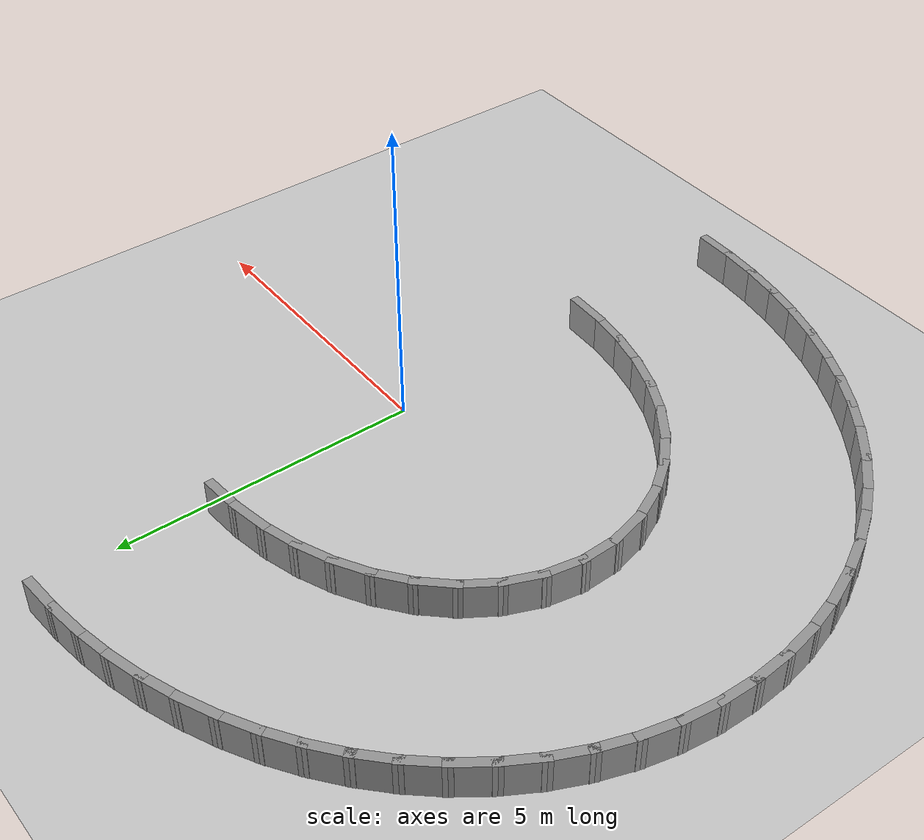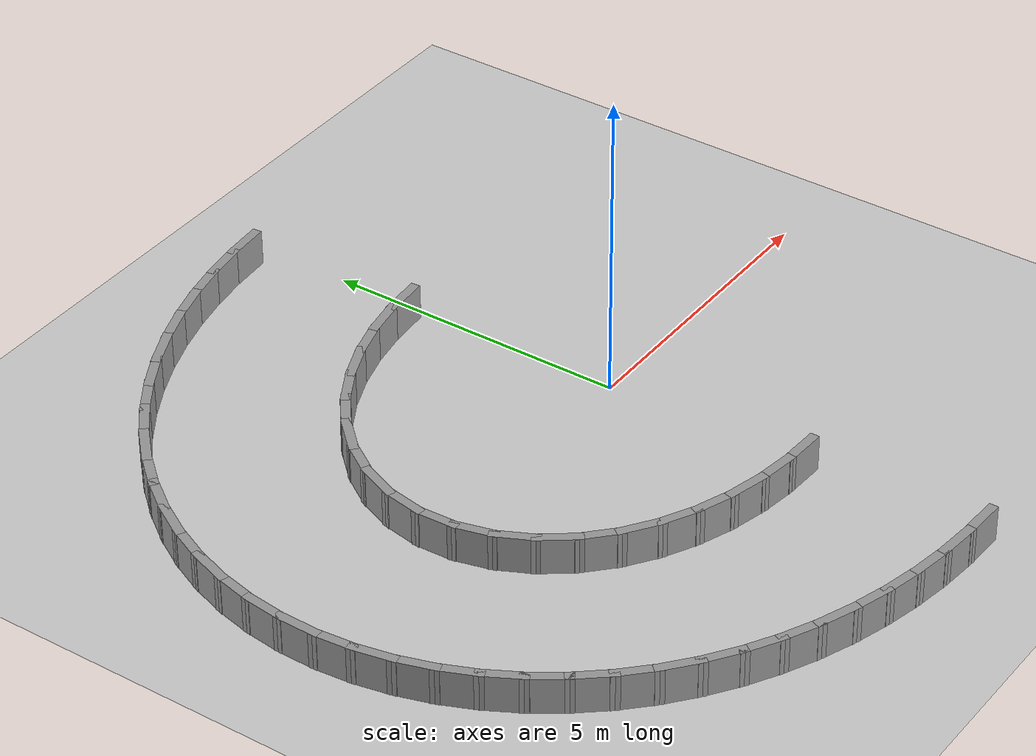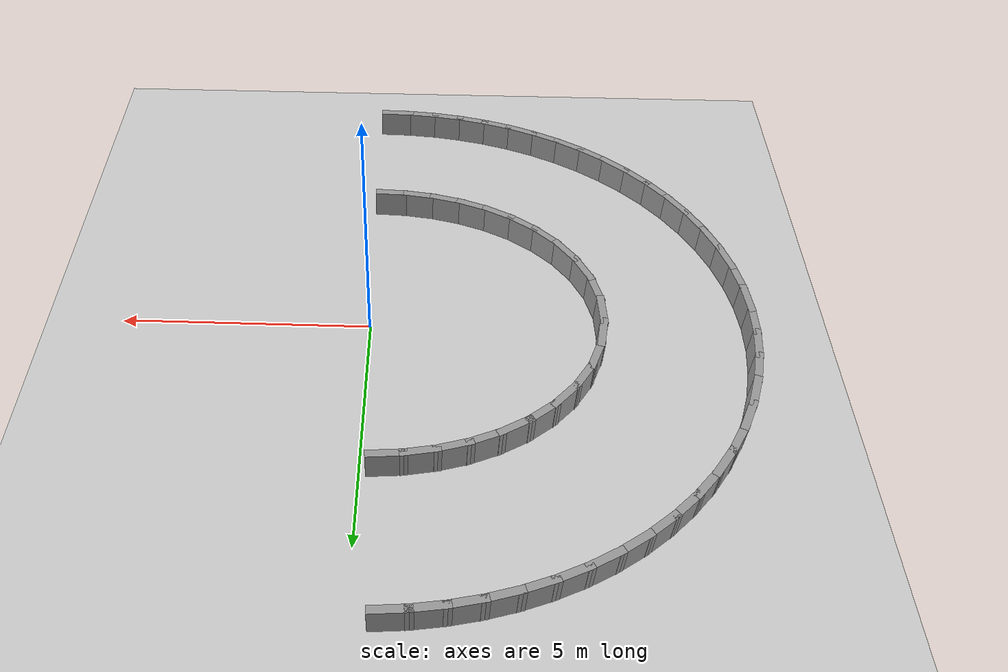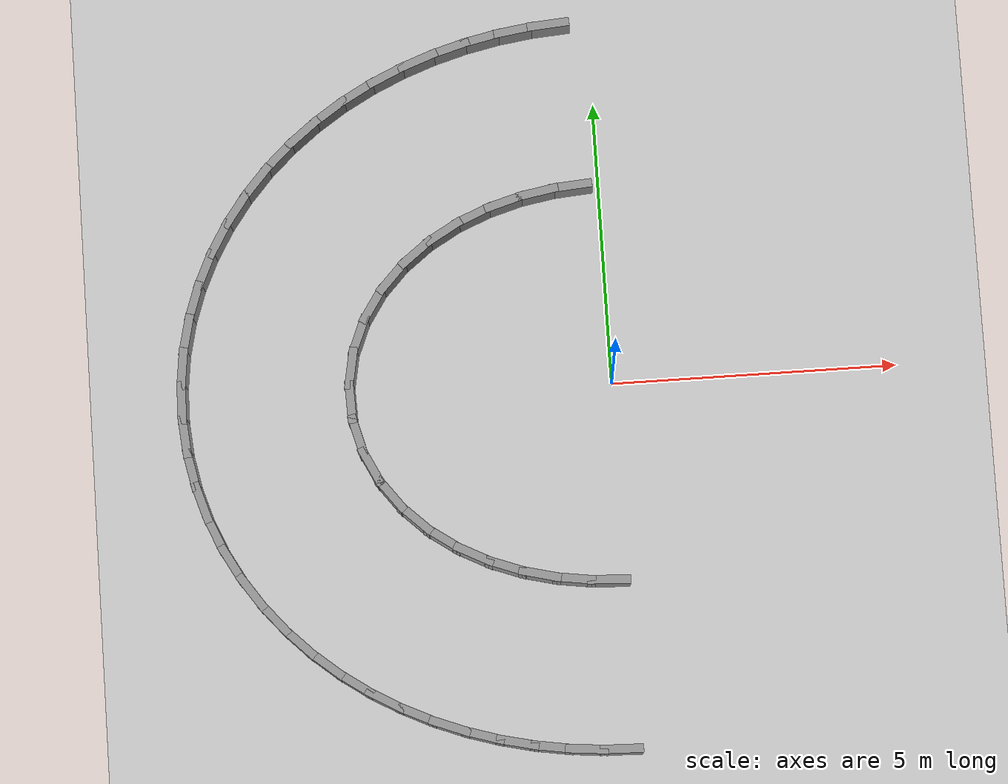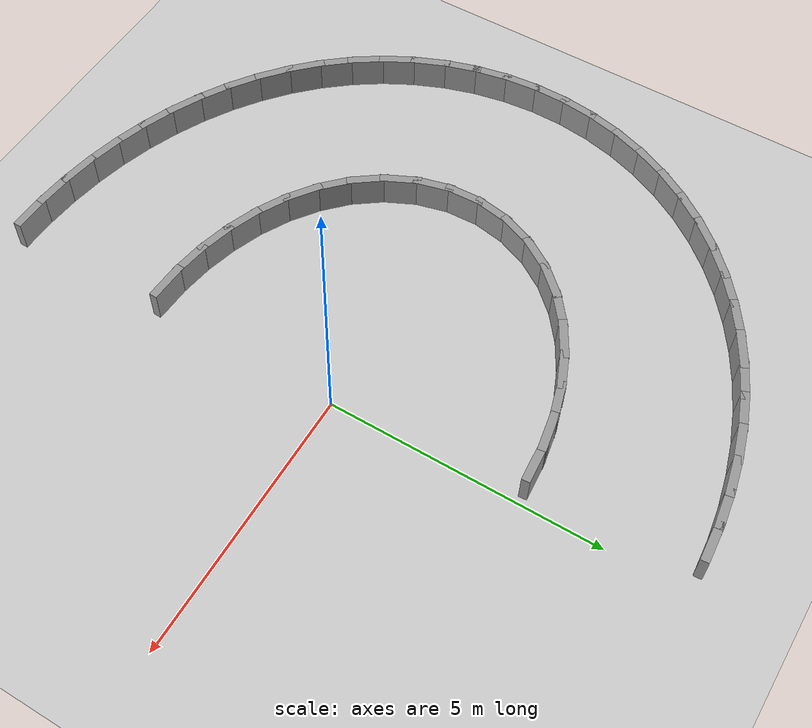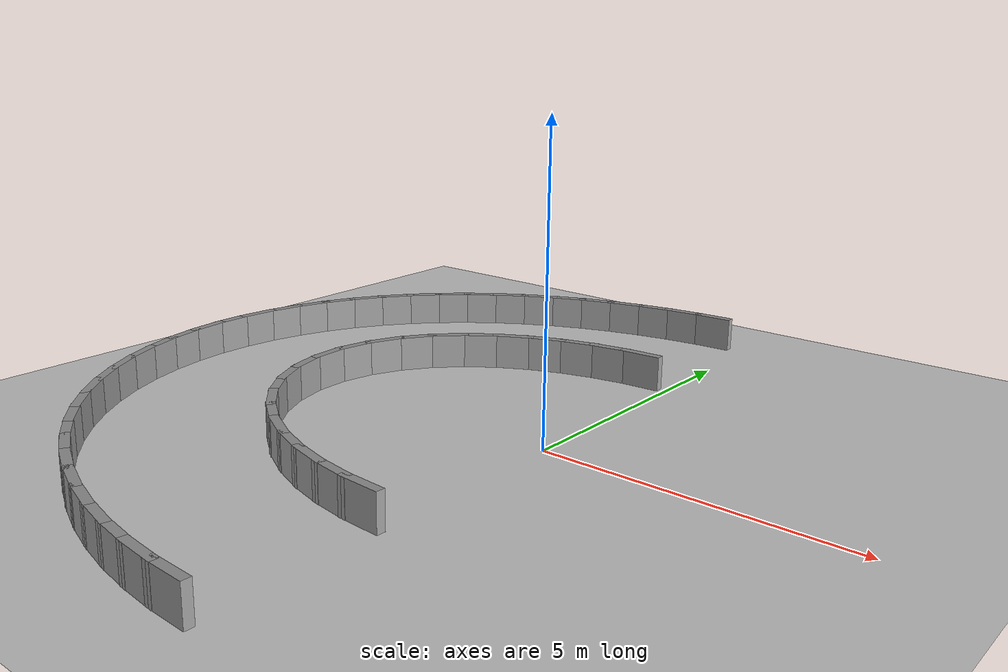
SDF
<sdf version="1.7">
 <world name="default">
  <model name="ground_plane">
   <static>1</static>
   <link name="link">
    <collision name="collision">
     <geometry><plane><normal>0 0 1</normal><size>100 100</size></plane></geometry>
     <surface><friction><ode><mu>100</mu><mu2>50</mu2></ode></friction></surface>
    </collision>
    <visual name="visual">
     <cast_shadows>0</cast_shadows>
     <geometry><plane><normal>0 0 1</normal><size>100 100</size></plane></geometry>
     <material>
      <script><uri>file://media/materials/scripts/gazebo.material</uri><name>Gazebo/Grey</name></script>
     </material>
    </visual>
   </link>
  </model>
  <model name="rand_lobed_00">
   <link name="Wall_11">
    <collision name="Wall_11_Collision">
     <geometry><box><size>0.7498 0.1500 0.6000</size></box></geometry>
     <pose>0 0 0.3000 0 -0 0</pose>
    </collision>
    <visual name="Wall_11_Visual">
     <pose>0 0 0.3000 0 -0 0</pose>
     <geometry><box><size>0.7498 0.1500 0.6000</size></box></geometry>
     <material>
      <script><uri>file://media/materials/scripts/gazebo.material</uri><name>Gazebo/Grey</name></script>
      <ambient>1 1 1 1</ambient>
     </material>
    </visual>
    <pose>-0.4982 3.4736 0 0 -0 -3.06247</pose>
   </link>
   <link name="Wall_12">
    <collision name="Wall_12_Collision">
     <geometry><box><size>0.7497 0.1500 0.6000</size></box></geometry>
     <pose>0 0 0.3000 0 -0 0</pose>
    </collision>
    <visual name="Wall_12_Visual">
     <pose>0 0 0.3000 0 -0 0</pose>
     <geometry><box><size>0.7497 0.1500 0.6000</size></box></geometry>
     <material>
      <script><uri>file://media/materials/scripts/gazebo.material</uri><name>Gazebo/Grey</name></script>
      <ambient>1 1 1 1</ambient>
     </material>
    </visual>
    <pose>-1.0923 3.3971 0 0 -0 -2.96452</pose>
   </link>
   <link name="Wall_13">
    <collision name="Wall_13_Collision">
     <geometry><box><size>0.7497 0.1500 0.6000</size></box></geometry>
     <pose>0 0 0.3000 0 -0 0</pose>
    </collision>
    <visual name="Wall_13_Visual">
     <pose>0 0 0.3000 0 -0 0</pose>
     <geometry><box><size>0.7497 0.1500 0.6000</size></box></geometry>
     <material>
      <script><uri>file://media/materials/scripts/gazebo.material</uri><name>Gazebo/Grey</name></script>
      <ambient>1 1 1 1</ambient>
     </material>
    </visual>
    <pose>-1.6756 3.2610 0 0 -0 -2.86036</pose>
   </link>
   <link name="Wall_14">
    <collision name="Wall_14_Collision">
     <geometry><box><size>0.7496 0.1500 0.6000</size></box></geometry>
     <pose>0 0 0.3000 0 -0 0</pose>
    </collision>
    <visual name="Wall_14_Visual">
     <pose>0 0 0.3000 0 -0 0</pose>
     <geometry><box><size>0.7496 0.1500 0.6000</size></box></geometry>
     <material>
      <script><uri>file://media/materials/scripts/gazebo.material</uri><name>Gazebo/Grey</name></script>
      <ambient>1 1 1 1</ambient>
     </material>
    </visual>
    <pose>-2.2404 3.0625 0 0 -0 -2.74700</pose>
   </link>
   <link name="Wall_15">
    <collision name="Wall_15_Collision">
     <geometry><box><size>0.7496 0.1500 0.6000</size></box></geometry>
     <pose>0 0 0.3000 0 -0 0</pose>
    </collision>
    <visual name="Wall_15_Visual">
     <pose>0 0 0.3000 0 -0 0</pose>
     <geometry><box><size>0.7496 0.1500 0.6000</size></box></geometry>
     <material>
      <script><uri>file://media/materials/scripts/gazebo.material</uri><name>Gazebo/Grey</name></script>
      <ambient>1 1 1 1</ambient>
     </material>
    </visual>
    <pose>-2.7774 2.7983 0 0 -0 -2.62170</pose>
   </link>
   <link name="Wall_16">
    <collision name="Wall_16_Collision">
     <geometry><box><size>0.7495 0.1500 0.6000</size></box></geometry>
     <pose>0 0 0.3000 0 -0 0</pose>
    </collision>
    <visual name="Wall_16_Visual">
     <pose>0 0 0.3000 0 -0 0</pose>
     <geometry><box><size>0.7495 0.1500 0.6000</size></box></geometry>
     <material>
      <script><uri>file://media/materials/scripts/gazebo.material</uri><name>Gazebo/Grey</name></script>
      <ambient>1 1 1 1</ambient>
     </material>
    </visual>
    <pose>-3.2744 2.4658 0 0 -0 -2.48210</pose>
   </link>
   <link name="Wall_17">
    <collision name="Wall_17_Collision">
     <geometry><box><size>0.7493 0.1500 0.6000</size></box></geometry>
     <pose>0 0 0.3000 0 -0 0</pose>
    </collision>
    <visual name="Wall_17_Visual">
     <pose>0 0 0.3000 0 -0 0</pose>
     <geometry><box><size>0.7493 0.1500 0.6000</size></box></geometry>
     <material>
      <script><uri>file://media/materials/scripts/gazebo.material</uri><name>Gazebo/Grey</name></script>
      <ambient>1 1 1 1</ambient>
     </material>
    </visual>
    <pose>-3.7167 2.0639 0 0 -0 -2.32595</pose>
   </link>
   <link name="Wall_18">
    <collision name="Wall_18_Collision">
     <geometry><box><size>0.7492 0.1500 0.6000</size></box></geometry>
     <pose>0 0 0.3000 0 -0 0</pose>
    </collision>
    <visual name="Wall_18_Visual">
     <pose>0 0 0.3000 0 -0 0</pose>
     <geometry><box><size>0.7492 0.1500 0.6000</size></box></geometry>
     <material>
      <script><uri>file://media/materials/scripts/gazebo.material</uri><name>Gazebo/Grey</name></script>
      <ambient>1 1 1 1</ambient>
     </material>
    </visual>
    <pose>-4.0865 1.5953 0 0 -0 -2.15167</pose>
   </link>
   <link name="Wall_19">
    <collision name="Wall_19_Collision">
     <geometry><box><size>0.7490 0.1500 0.6000</size></box></geometry>
     <pose>0 0 0.3000 0 -0 0</pose>
    </collision>
    <visual name="Wall_19_Visual">
     <pose>0 0 0.3000 0 -0 0</pose>
     <geometry><box><size>0.7490 0.1500 0.6000</size></box></geometry>
     <material>
      <script><uri>file://media/materials/scripts/gazebo.material</uri><name>Gazebo/Grey</name></script>
      <ambient>1 1 1 1</ambient>
     </material>
    </visual>
    <pose>-4.3643 1.0676 0 0 -0 -1.95907</pose>
   </link>
   <link name="Wall_20">
    <collision name="Wall_20_Collision">
     <geometry><box><size>0.7489 0.1500 0.6000</size></box></geometry>
     <pose>0 0 0.3000 0 -0 0</pose>
    </collision>
    <visual name="Wall_20_Visual">
     <pose>0 0 0.3000 0 -0 0</pose>
     <geometry><box><size>0.7489 0.1500 0.6000</size></box></geometry>
     <material>
      <script><uri>file://media/materials/scripts/gazebo.material</uri><name>Gazebo/Grey</name></script>
      <ambient>1 1 1 1</ambient>
     </material>
    </visual>
    <pose>-4.5314 0.4959 0 0 -0 -1.75125</pose>
   </link>
   <link name="Wall_21">
    <collision name="Wall_21_Collision">
     <geometry><box><size>0.7488 0.1500 0.6000</size></box></geometry>
     <pose>0 0 0.3000 0 -0 0</pose>
    </collision>
    <visual name="Wall_21_Visual">
     <pose>0 0 0.3000 0 -0 0</pose>
     <geometry><box><size>0.7488 0.1500 0.6000</size></box></geometry>
     <material>
      <script><uri>file://media/materials/scripts/gazebo.material</uri><name>Gazebo/Grey</name></script>
      <ambient>1 1 1 1</ambient>
     </material>
    </visual>
    <pose>-4.5744 -0.0979 0 0 -0 -1.53515</pose>
   </link>
   <link name="Wall_22">
    <collision name="Wall_22_Collision">
     <geometry><box><size>0.7489 0.1500 0.6000</size></box></geometry>
     <pose>0 0 0.3000 0 -0 0</pose>
    </collision>
    <visual name="Wall_22_Visual">
     <pose>0 0 0.3000 0 -0 0</pose>
     <geometry><box><size>0.7489 0.1500 0.6000</size></box></geometry>
     <material>
      <script><uri>file://media/materials/scripts/gazebo.material</uri><name>Gazebo/Grey</name></script>
      <ambient>1 1 1 1</ambient>
     </material>
    </visual>
    <pose>-4.4897 -0.6873 0 0 -0 -1.32075</pose>
   </link>
   <link name="Wall_23">
    <collision name="Wall_23_Collision">
     <geometry><box><size>0.7490 0.1500 0.6000</size></box></geometry>
     <pose>0 0 0.3000 0 -0 0</pose>
    </collision>
    <visual name="Wall_23_Visual">
     <pose>0 0 0.3000 0 -0 0</pose>
     <geometry><box><size>0.7490 0.1500 0.6000</size></box></geometry>
     <material>
      <script><uri>file://media/materials/scripts/gazebo.material</uri><name>Gazebo/Grey</name></script>
      <ambient>1 1 1 1</ambient>
     </material>
    </visual>
    <pose>-4.2844 -1.2467 0 0 -0 -1.11735</pose>
   </link>
   <link name="Wall_24">
    <collision name="Wall_24_Collision">
     <geometry><box><size>0.7492 0.1500 0.6000</size></box></geometry>
     <pose>0 0 0.3000 0 -0 0</pose>
    </collision>
    <visual name="Wall_24_Visual">
     <pose>0 0 0.3000 0 -0 0</pose>
     <geometry><box><size>0.7492 0.1500 0.6000</size></box></geometry>
     <material>
      <script><uri>file://media/materials/scripts/gazebo.material</uri><name>Gazebo/Grey</name></script>
      <ambient>1 1 1 1</ambient>
     </material>
    </visual>
    <pose>-3.9742 -1.7562 0 0 -0 -0.93064</pose>
   </link>
   <link name="Wall_25">
    <collision name="Wall_25_Collision">
     <geometry><box><size>0.7494 0.1500 0.6000</size></box></geometry>
     <pose>0 0 0.3000 0 -0 0</pose>
    </collision>
    <visual name="Wall_25_Visual">
     <pose>0 0 0.3000 0 -0 0</pose>
     <geometry><box><size>0.7494 0.1500 0.6000</size></box></geometry>
     <material>
      <script><uri>file://media/materials/scripts/gazebo.material</uri><name>Gazebo/Grey</name></script>
      <ambient>1 1 1 1</ambient>
     </material>
    </visual>
    <pose>-3.5785 -2.2035 0 0 -0 -0.76241</pose>
   </link>
   <link name="Wall_26">
    <collision name="Wall_26_Collision">
     <geometry><box><size>0.7495 0.1500 0.6000</size></box></geometry>
     <pose>0 0 0.3000 0 -0 0</pose>
    </collision>
    <visual name="Wall_26_Visual">
     <pose>0 0 0.3000 0 -0 0</pose>
     <geometry><box><size>0.7495 0.1500 0.6000</size></box></geometry>
     <material>
      <script><uri>file://media/materials/scripts/gazebo.material</uri><name>Gazebo/Grey</name></script>
      <ambient>1 1 1 1</ambient>
     </material>
    </visual>
    <pose>-3.1164 -2.5826 0 0 -0 -0.61192</pose>
   </link>
   <link name="Wall_27">
    <collision name="Wall_27_Collision">
     <geometry><box><size>0.7496 0.1500 0.6000</size></box></geometry>
     <pose>0 0 0.3000 0 -0 0</pose>
    </collision>
    <visual name="Wall_27_Visual">
     <pose>0 0 0.3000 0 -0 0</pose>
     <geometry><box><size>0.7496 0.1500 0.6000</size></box></geometry>
     <material>
      <script><uri>file://media/materials/scripts/gazebo.material</uri><name>Gazebo/Grey</name></script>
      <ambient>1 1 1 1</ambient>
     </material>
    </visual>
    <pose>-2.6048 -2.8925 0 0 -0 -0.47728</pose>
   </link>
   <link name="Wall_28">
    <collision name="Wall_28_Collision">
     <geometry><box><size>0.7497 0.1500 0.6000</size></box></geometry>
     <pose>0 0 0.3000 0 -0 0</pose>
    </collision>
    <visual name="Wall_28_Visual">
     <pose>0 0 0.3000 0 -0 0</pose>
     <geometry><box><size>0.7497 0.1500 0.6000</size></box></geometry>
     <material>
      <script><uri>file://media/materials/scripts/gazebo.material</uri><name>Gazebo/Grey</name></script>
      <ambient>1 1 1 1</ambient>
     </material>
    </visual>
    <pose>-2.0575 -3.1348 0 0 -0 -0.35619</pose>
   </link>
   <link name="Wall_29">
    <collision name="Wall_29_Collision">
     <geometry><box><size>0.7497 0.1500 0.6000</size></box></geometry>
     <pose>0 0 0.3000 0 -0 0</pose>
    </collision>
    <visual name="Wall_29_Visual">
     <pose>0 0 0.3000 0 -0 0</pose>
     <geometry><box><size>0.7497 0.1500 0.6000</size></box></geometry>
     <material>
      <script><uri>file://media/materials/scripts/gazebo.material</uri><name>Gazebo/Grey</name></script>
      <ambient>1 1 1 1</ambient>
     </material>
    </visual>
    <pose>-1.4856 -3.3124 0 0 -0 -0.24614</pose>
   </link>
   <link name="Wall_30">
    <collision name="Wall_30_Collision">
     <geometry><box><size>0.7498 0.1500 0.6000</size></box></geometry>
     <pose>0 0 0.3000 0 -0 0</pose>
    </collision>
    <visual name="Wall_30_Visual">
     <pose>0 0 0.3000 0 -0 0</pose>
     <geometry><box><size>0.7498 0.1500 0.6000</size></box></geometry>
     <material>
      <script><uri>file://media/materials/scripts/gazebo.material</uri><name>Gazebo/Grey</name></script>
      <ambient>1 1 1 1</ambient>
     </material>
    </visual>
    <pose>-0.8981 -3.4286 0 0 -0 -0.14437</pose>
   </link>
   <link name="Wall_31">
    <collision name="Wall_31_Collision">
     <geometry><box><size>0.7498 0.1500 0.6000</size></box></geometry>
     <pose>0 0 0.3000 0 -0 0</pose>
    </collision>
    <visual name="Wall_31_Visual">
     <pose>0 0 0.3000 0 -0 0</pose>
     <geometry><box><size>0.7498 0.1500 0.6000</size></box></geometry>
     <material>
      <script><uri>file://media/materials/scripts/gazebo.material</uri><name>Gazebo/Grey</name></script>
      <ambient>1 1 1 1</ambient>
     </material>
    </visual>
    <pose>-0.3018 -3.4861 0 0 -0 -0.04777</pose>
   </link>
   <link name="Wall_61">
    <collision name="Wall_61_Collision">
     <geometry><box><size>0.7499 0.1500 0.6000</size></box></geometry>
     <pose>0 0 0.3000 0 -0 0</pose>
    </collision>
    <visual name="Wall_61_Visual">
     <pose>0 0 0.3000 0 -0 0</pose>
     <geometry><box><size>0.7499 0.1500 0.6000</size></box></geometry>
     <material>
      <script><uri>file://media/materials/scripts/gazebo.material</uri><name>Gazebo/Grey</name></script>
      <ambient>1 1 1 1</ambient>
     </material>
    </visual>
    <pose>-0.7053 6.3925 0 0 -0 -3.06516</pose>
   </link>
   <link name="Wall_62">
    <collision name="Wall_62_Collision">
     <geometry><box><size>0.7499 0.1500 0.6000</size></box></geometry>
     <pose>0 0 0.3000 0 -0 0</pose>
    </collision>
    <visual name="Wall_62_Visual">
     <pose>0 0 0.3000 0 -0 0</pose>
     <geometry><box><size>0.7499 0.1500 0.6000</size></box></geometry>
     <material>
      <script><uri>file://media/materials/scripts/gazebo.material</uri><name>Gazebo/Grey</name></script>
      <ambient>1 1 1 1</ambient>
     </material>
    </visual>
    <pose>-1.3013 6.3271 0 0 -0 -2.99930</pose>
   </link>
   <link name="Wall_63">
    <collision name="Wall_63_Collision">
     <geometry><box><size>0.7499 0.1500 0.6000</size></box></geometry>
     <pose>0 0 0.3000 0 -0 0</pose>
    </collision>
    <visual name="Wall_63_Visual">
     <pose>0 0 0.3000 0 -0 0</pose>
     <geometry><box><size>0.7499 0.1500 0.6000</size></box></geometry>
     <material>
      <script><uri>file://media/materials/scripts/gazebo.material</uri><name>Gazebo/Grey</name></script>
      <ambient>1 1 1 1</ambient>
     </material>
    </visual>
    <pose>-1.8916 6.2221 0 0 -0 -2.93186</pose>
   </link>
   <link name="Wall_64">
    <collision name="Wall_64_Collision">
     <geometry><box><size>0.7499 0.1500 0.6000</size></box></geometry>
     <pose>0 0 0.3000 0 -0 0</pose>
    </collision>
    <visual name="Wall_64_Visual">
     <pose>0 0 0.3000 0 -0 0</pose>
     <geometry><box><size>0.7499 0.1500 0.6000</size></box></geometry>
     <material>
      <script><uri>file://media/materials/scripts/gazebo.material</uri><name>Gazebo/Grey</name></script>
      <ambient>1 1 1 1</ambient>
     </material>
    </visual>
    <pose>-2.4732 6.0770 0 0 -0 -2.86231</pose>
   </link>
   <link name="Wall_65">
    <collision name="Wall_65_Collision">
     <geometry><box><size>0.7499 0.1500 0.6000</size></box></geometry>
     <pose>0 0 0.3000 0 -0 0</pose>
    </collision>
    <visual name="Wall_65_Visual">
     <pose>0 0 0.3000 0 -0 0</pose>
     <geometry><box><size>0.7499 0.1500 0.6000</size></box></geometry>
     <material>
      <script><uri>file://media/materials/scripts/gazebo.material</uri><name>Gazebo/Grey</name></script>
      <ambient>1 1 1 1</ambient>
     </material>
    </visual>
    <pose>-3.0432 5.8911 0 0 -0 -2.79016</pose>
   </link>
   <link name="Wall_66">
    <collision name="Wall_66_Collision">
     <geometry><box><size>0.7499 0.1500 0.6000</size></box></geometry>
     <pose>0 0 0.3000 0 -0 0</pose>
    </collision>
    <visual name="Wall_66_Visual">
     <pose>0 0 0.3000 0 -0 0</pose>
     <geometry><box><size>0.7499 0.1500 0.6000</size></box></geometry>
     <material>
      <script><uri>file://media/materials/scripts/gazebo.material</uri><name>Gazebo/Grey</name></script>
      <ambient>1 1 1 1</ambient>
     </material>
    </visual>
    <pose>-3.5978 5.6637 0 0 -0 -2.71512</pose>
   </link>
   <link name="Wall_67">
    <collision name="Wall_67_Collision">
     <geometry><box><size>0.7498 0.1500 0.6000</size></box></geometry>
     <pose>0 0 0.3000 0 -0 0</pose>
    </collision>
    <visual name="Wall_67_Visual">
     <pose>0 0 0.3000 0 -0 0</pose>
     <geometry><box><size>0.7498 0.1500 0.6000</size></box></geometry>
     <material>
      <script><uri>file://media/materials/scripts/gazebo.material</uri><name>Gazebo/Grey</name></script>
      <ambient>1 1 1 1</ambient>
     </material>
    </visual>
    <pose>-4.1334 5.3947 0 0 -0 -2.63703</pose>
   </link>
   <link name="Wall_68">
    <collision name="Wall_68_Collision">
     <geometry><box><size>0.7498 0.1500 0.6000</size></box></geometry>
     <pose>0 0 0.3000 0 -0 0</pose>
    </collision>
    <visual name="Wall_68_Visual">
     <pose>0 0 0.3000 0 -0 0</pose>
     <geometry><box><size>0.7498 0.1500 0.6000</size></box></geometry>
     <material>
      <script><uri>file://media/materials/scripts/gazebo.material</uri><name>Gazebo/Grey</name></script>
      <ambient>1 1 1 1</ambient>
     </material>
    </visual>
    <pose>-4.6459 5.0839 0 0 -0 -2.55568</pose>
   </link>
   <link name="Wall_69">
    <collision name="Wall_69_Collision">
     <geometry><box><size>0.7498 0.1500 0.6000</size></box></geometry>
     <pose>0 0 0.3000 0 -0 0</pose>
    </collision>
    <visual name="Wall_69_Visual">
     <pose>0 0 0.3000 0 -0 0</pose>
     <geometry><box><size>0.7498 0.1500 0.6000</size></box></geometry>
     <material>
      <script><uri>file://media/materials/scripts/gazebo.material</uri><name>Gazebo/Grey</name></script>
      <ambient>1 1 1 1</ambient>
     </material>
    </visual>
    <pose>-5.1307 4.7317 0 0 -0 -2.47106</pose>
   </link>
   <link name="Wall_70">
    <collision name="Wall_70_Collision">
     <geometry><box><size>0.7498 0.1500 0.6000</size></box></geometry>
     <pose>0 0 0.3000 0 -0 0</pose>
    </collision>
    <visual name="Wall_70_Visual">
     <pose>0 0 0.3000 0 -0 0</pose>
     <geometry><box><size>0.7498 0.1500 0.6000</size></box></geometry>
     <material>
      <script><uri>file://media/materials/scripts/gazebo.material</uri><name>Gazebo/Grey</name></script>
      <ambient>1 1 1 1</ambient>
     </material>
    </visual>
    <pose>-5.5834 4.3390 0 0 -0 -2.38319</pose>
   </link>
   <link name="Wall_71">
    <collision name="Wall_71_Collision">
     <geometry><box><size>0.7498 0.1500 0.6000</size></box></geometry>
     <pose>0 0 0.3000 0 -0 0</pose>
    </collision>
    <visual name="Wall_71_Visual">
     <pose>0 0 0.3000 0 -0 0</pose>
     <geometry><box><size>0.7498 0.1500 0.6000</size></box></geometry>
     <material>
      <script><uri>file://media/materials/scripts/gazebo.material</uri><name>Gazebo/Grey</name></script>
      <ambient>1 1 1 1</ambient>
     </material>
    </visual>
    <pose>-5.9992 3.9076 0 0 -0 -2.29218</pose>
   </link>
   <link name="Wall_72">
    <collision name="Wall_72_Collision">
     <geometry><box><size>0.7498 0.1500 0.6000</size></box></geometry>
     <pose>0 0 0.3000 0 -0 0</pose>
    </collision>
    <visual name="Wall_72_Visual">
     <pose>0 0 0.3000 0 -0 0</pose>
     <geometry><box><size>0.7498 0.1500 0.6000</size></box></geometry>
     <material>
      <script><uri>file://media/materials/scripts/gazebo.material</uri><name>Gazebo/Grey</name></script>
      <ambient>1 1 1 1</ambient>
     </material>
    </visual>
    <pose>-6.3732 3.4396 0 0 -0 -2.19805</pose>
   </link>
   <link name="Wall_73">
    <collision name="Wall_73_Collision">
     <geometry><box><size>0.7498 0.1500 0.6000</size></box></geometry>
     <pose>0 0 0.3000 0 -0 0</pose>
    </collision>
    <visual name="Wall_73_Visual">
     <pose>0 0 0.3000 0 -0 0</pose>
     <geometry><box><size>0.7498 0.1500 0.6000</size></box></geometry>
     <material>
      <script><uri>file://media/materials/scripts/gazebo.material</uri><name>Gazebo/Grey</name></script>
      <ambient>1 1 1 1</ambient>
     </material>
    </visual>
    <pose>-6.7009 2.9381 0 0 -0 -2.10109</pose>
   </link>
   <link name="Wall_74">
    <collision name="Wall_74_Collision">
     <geometry><box><size>0.7497 0.1500 0.6000</size></box></geometry>
     <pose>0 0 0.3000 0 -0 0</pose>
    </collision>
    <visual name="Wall_74_Visual">
     <pose>0 0 0.3000 0 -0 0</pose>
     <geometry><box><size>0.7497 0.1500 0.6000</size></box></geometry>
     <material>
      <script><uri>file://media/materials/scripts/gazebo.material</uri><name>Gazebo/Grey</name></script>
      <ambient>1 1 1 1</ambient>
     </material>
    </visual>
    <pose>-6.9778 2.4069 0 0 -0 -2.00157</pose>
   </link>
   <link name="Wall_75">
    <collision name="Wall_75_Collision">
     <geometry><box><size>0.7497 0.1500 0.6000</size></box></geometry>
     <pose>0 0 0.3000 0 -0 0</pose>
    </collision>
    <visual name="Wall_75_Visual">
     <pose>0 0 0.3000 0 -0 0</pose>
     <geometry><box><size>0.7497 0.1500 0.6000</size></box></geometry>
     <material>
      <script><uri>file://media/materials/scripts/gazebo.material</uri><name>Gazebo/Grey</name></script>
      <ambient>1 1 1 1</ambient>
     </material>
    </visual>
    <pose>-7.1999 1.8507 0 0 -0 -1.89985</pose>
   </link>
   <link name="Wall_76">
    <collision name="Wall_76_Collision">
     <geometry><box><size>0.7497 0.1500 0.6000</size></box></geometry>
     <pose>0 0 0.3000 0 -0 0</pose>
    </collision>
    <visual name="Wall_76_Visual">
     <pose>0 0 0.3000 0 -0 0</pose>
     <geometry><box><size>0.7497 0.1500 0.6000</size></box></geometry>
     <material>
      <script><uri>file://media/materials/scripts/gazebo.material</uri><name>Gazebo/Grey</name></script>
      <ambient>1 1 1 1</ambient>
     </material>
    </visual>
    <pose>-7.3639 1.2746 0 0 -0 -1.79631</pose>
   </link>
   <link name="Wall_77">
    <collision name="Wall_77_Collision">
     <geometry><box><size>0.7497 0.1500 0.6000</size></box></geometry>
     <pose>0 0 0.3000 0 -0 0</pose>
    </collision>
    <visual name="Wall_77_Visual">
     <pose>0 0 0.3000 0 -0 0</pose>
     <geometry><box><size>0.7497 0.1500 0.6000</size></box></geometry>
     <material>
      <script><uri>file://media/materials/scripts/gazebo.material</uri><name>Gazebo/Grey</name></script>
      <ambient>1 1 1 1</ambient>
     </material>
    </visual>
    <pose>-7.4671 0.6847 0 0 -0 -1.69157</pose>
   </link>
   <link name="Wall_78">
    <collision name="Wall_78_Collision">
     <geometry><box><size>0.7497 0.1500 0.6000</size></box></geometry>
     <pose>0 0 0.3000 0 -0 0</pose>
    </collision>
    <visual name="Wall_78_Visual">
     <pose>0 0 0.3000 0 -0 0</pose>
     <geometry><box><size>0.7497 0.1500 0.6000</size></box></geometry>
     <material>
      <script><uri>file://media/materials/scripts/gazebo.material</uri><name>Gazebo/Grey</name></script>
      <ambient>1 1 1 1</ambient>
     </material>
    </visual>
    <pose>-7.5078 0.0872 0 0 -0 -1.58617</pose>
   </link>
   <link name="Wall_79">
    <collision name="Wall_79_Collision">
     <geometry><box><size>0.7497 0.1500 0.6000</size></box></geometry>
     <pose>0 0 0.3000 0 -0 0</pose>
    </collision>
    <visual name="Wall_79_Visual">
     <pose>0 0 0.3000 0 -0 0</pose>
     <geometry><box><size>0.7497 0.1500 0.6000</size></box></geometry>
     <material>
      <script><uri>file://media/materials/scripts/gazebo.material</uri><name>Gazebo/Grey</name></script>
      <ambient>1 1 1 1</ambient>
     </material>
    </visual>
    <pose>-7.4854 -0.5113 0 0 -0 -1.48067</pose>
   </link>
   <link name="Wall_80">
    <collision name="Wall_80_Collision">
     <geometry><box><size>0.7497 0.1500 0.6000</size></box></geometry>
     <pose>0 0 0.3000 0 -0 0</pose>
    </collision>
    <visual name="Wall_80_Visual">
     <pose>0 0 0.3000 0 -0 0</pose>
     <geometry><box><size>0.7497 0.1500 0.6000</size></box></geometry>
     <material>
      <script><uri>file://media/materials/scripts/gazebo.material</uri><name>Gazebo/Grey</name></script>
      <ambient>1 1 1 1</ambient>
     </material>
    </visual>
    <pose>-7.4003 -1.1041 0 0 -0 -1.37561</pose>
   </link>
   <link name="Wall_81">
    <collision name="Wall_81_Collision">
     <geometry><box><size>0.7497 0.1500 0.6000</size></box></geometry>
     <pose>0 0 0.3000 0 -0 0</pose>
    </collision>
    <visual name="Wall_81_Visual">
     <pose>0 0 0.3000 0 -0 0</pose>
     <geometry><box><size>0.7497 0.1500 0.6000</size></box></geometry>
     <material>
      <script><uri>file://media/materials/scripts/gazebo.material</uri><name>Gazebo/Grey</name></script>
      <ambient>1 1 1 1</ambient>
     </material>
    </visual>
    <pose>-7.2538 -1.6848 0 0 -0 -1.27171</pose>
   </link>
   <link name="Wall_82">
    <collision name="Wall_82_Collision">
     <geometry><box><size>0.7497 0.1500 0.6000</size></box></geometry>
     <pose>0 0 0.3000 0 -0 0</pose>
    </collision>
    <visual name="Wall_82_Visual">
     <pose>0 0 0.3000 0 -0 0</pose>
     <geometry><box><size>0.7497 0.1500 0.6000</size></box></geometry>
     <material>
      <script><uri>file://media/materials/scripts/gazebo.material</uri><name>Gazebo/Grey</name></script>
      <ambient>1 1 1 1</ambient>
     </material>
    </visual>
    <pose>-7.0483 -2.2474 0 0 -0 -1.16942</pose>
   </link>
   <link name="Wall_83">
    <collision name="Wall_83_Collision">
     <geometry><box><size>0.7498 0.1500 0.6000</size></box></geometry>
     <pose>0 0 0.3000 0 -0 0</pose>
    </collision>
    <visual name="Wall_83_Visual">
     <pose>0 0 0.3000 0 -0 0</pose>
     <geometry><box><size>0.7498 0.1500 0.6000</size></box></geometry>
     <material>
      <script><uri>file://media/materials/scripts/gazebo.material</uri><name>Gazebo/Grey</name></script>
      <ambient>1 1 1 1</ambient>
     </material>
    </visual>
    <pose>-6.7869 -2.7864 0 0 -0 -1.06921</pose>
   </link>
   <link name="Wall_84">
    <collision name="Wall_84_Collision">
     <geometry><box><size>0.7498 0.1500 0.6000</size></box></geometry>
     <pose>0 0 0.3000 0 -0 0</pose>
    </collision>
    <visual name="Wall_84_Visual">
     <pose>0 0 0.3000 0 -0 0</pose>
     <geometry><box><size>0.7498 0.1500 0.6000</size></box></geometry>
     <material>
      <script><uri>file://media/materials/scripts/gazebo.material</uri><name>Gazebo/Grey</name></script>
      <ambient>1 1 1 1</ambient>
     </material>
    </visual>
    <pose>-6.4736 -3.2970 0 0 -0 -0.97148</pose>
   </link>
   <link name="Wall_85">
    <collision name="Wall_85_Collision">
     <geometry><box><size>0.7498 0.1500 0.6000</size></box></geometry>
     <pose>0 0 0.3000 0 -0 0</pose>
    </collision>
    <visual name="Wall_85_Visual">
     <pose>0 0 0.3000 0 -0 0</pose>
     <geometry><box><size>0.7498 0.1500 0.6000</size></box></geometry>
     <material>
      <script><uri>file://media/materials/scripts/gazebo.material</uri><name>Gazebo/Grey</name></script>
      <ambient>1 1 1 1</ambient>
     </material>
    </visual>
    <pose>-6.1125 -3.7750 0 0 -0 -0.87652</pose>
   </link>
   <link name="Wall_86">
    <collision name="Wall_86_Collision">
     <geometry><box><size>0.7498 0.1500 0.6000</size></box></geometry>
     <pose>0 0 0.3000 0 -0 0</pose>
    </collision>
    <visual name="Wall_86_Visual">
     <pose>0 0 0.3000 0 -0 0</pose>
     <geometry><box><size>0.7498 0.1500 0.6000</size></box></geometry>
     <material>
      <script><uri>file://media/materials/scripts/gazebo.material</uri><name>Gazebo/Grey</name></script>
      <ambient>1 1 1 1</ambient>
     </material>
    </visual>
    <pose>-5.7084 -4.2174 0 0 -0 -0.78454</pose>
   </link>
   <link name="Wall_87">
    <collision name="Wall_87_Collision">
     <geometry><box><size>0.7498 0.1500 0.6000</size></box></geometry>
     <pose>0 0 0.3000 0 -0 0</pose>
    </collision>
    <visual name="Wall_87_Visual">
     <pose>0 0 0.3000 0 -0 0</pose>
     <geometry><box><size>0.7498 0.1500 0.6000</size></box></geometry>
     <material>
      <script><uri>file://media/materials/scripts/gazebo.material</uri><name>Gazebo/Grey</name></script>
      <ambient>1 1 1 1</ambient>
     </material>
    </visual>
    <pose>-5.2660 -4.6215 0 0 -0 -0.69575</pose>
   </link>
   <link name="Wall_88">
    <collision name="Wall_88_Collision">
     <geometry><box><size>0.7498 0.1500 0.6000</size></box></geometry>
     <pose>0 0 0.3000 0 -0 0</pose>
    </collision>
    <visual name="Wall_88_Visual">
     <pose>0 0 0.3000 0 -0 0</pose>
     <geometry><box><size>0.7498 0.1500 0.6000</size></box></geometry>
     <material>
      <script><uri>file://media/materials/scripts/gazebo.material</uri><name>Gazebo/Grey</name></script>
      <ambient>1 1 1 1</ambient>
     </material>
    </visual>
    <pose>-4.7900 -4.9856 0 0 -0 -0.61020</pose>
   </link>
   <link name="Wall_89">
    <collision name="Wall_89_Collision">
     <geometry><box><size>0.7498 0.1500 0.6000</size></box></geometry>
     <pose>0 0 0.3000 0 -0 0</pose>
    </collision>
    <visual name="Wall_89_Visual">
     <pose>0 0 0.3000 0 -0 0</pose>
     <geometry><box><size>0.7498 0.1500 0.6000</size></box></geometry>
     <material>
      <script><uri>file://media/materials/scripts/gazebo.material</uri><name>Gazebo/Grey</name></script>
      <ambient>1 1 1 1</ambient>
     </material>
    </visual>
    <pose>-4.2851 -5.3085 0 0 -0 -0.52793</pose>
   </link>
   <link name="Wall_90">
    <collision name="Wall_90_Collision">
     <geometry><box><size>0.7498 0.1500 0.6000</size></box></geometry>
     <pose>0 0 0.3000 0 -0 0</pose>
    </collision>
    <visual name="Wall_90_Visual">
     <pose>0 0 0.3000 0 -0 0</pose>
     <geometry><box><size>0.7498 0.1500 0.6000</size></box></geometry>
     <material>
      <script><uri>file://media/materials/scripts/gazebo.material</uri><name>Gazebo/Grey</name></script>
      <ambient>1 1 1 1</ambient>
     </material>
    </visual>
    <pose>-3.7558 -5.5898 0 0 -0 -0.44886</pose>
   </link>
   <link name="Wall_91">
    <collision name="Wall_91_Collision">
     <geometry><box><size>0.7499 0.1500 0.6000</size></box></geometry>
     <pose>0 0 0.3000 0 -0 0</pose>
    </collision>
    <visual name="Wall_91_Visual">
     <pose>0 0 0.3000 0 -0 0</pose>
     <geometry><box><size>0.7499 0.1500 0.6000</size></box></geometry>
     <material>
      <script><uri>file://media/materials/scripts/gazebo.material</uri><name>Gazebo/Grey</name></script>
      <ambient>1 1 1 1</ambient>
     </material>
    </visual>
    <pose>-3.2063 -5.8292 0 0 -0 -0.37296</pose>
   </link>
   <link name="Wall_92">
    <collision name="Wall_92_Collision">
     <geometry><box><size>0.7499 0.1500 0.6000</size></box></geometry>
     <pose>0 0 0.3000 0 -0 0</pose>
    </collision>
    <visual name="Wall_92_Visual">
     <pose>0 0 0.3000 0 -0 0</pose>
     <geometry><box><size>0.7499 0.1500 0.6000</size></box></geometry>
     <material>
      <script><uri>file://media/materials/scripts/gazebo.material</uri><name>Gazebo/Grey</name></script>
      <ambient>1 1 1 1</ambient>
     </material>
    </visual>
    <pose>-2.6405 -6.0271 0 0 -0 -0.30000</pose>
   </link>
   <link name="Wall_93">
    <collision name="Wall_93_Collision">
     <geometry><box><size>0.7499 0.1500 0.6000</size></box></geometry>
     <pose>0 0 0.3000 0 -0 0</pose>
    </collision>
    <visual name="Wall_93_Visual">
     <pose>0 0 0.3000 0 -0 0</pose>
     <geometry><box><size>0.7499 0.1500 0.6000</size></box></geometry>
     <material>
      <script><uri>file://media/materials/scripts/gazebo.material</uri><name>Gazebo/Grey</name></script>
      <ambient>1 1 1 1</ambient>
     </material>
    </visual>
    <pose>-2.0619 -6.1841 0 0 -0 -0.22974</pose>
   </link>
   <link name="Wall_94">
    <collision name="Wall_94_Collision">
     <geometry><box><size>0.7499 0.1500 0.6000</size></box></geometry>
     <pose>0 0 0.3000 0 -0 0</pose>
    </collision>
    <visual name="Wall_94_Visual">
     <pose>0 0 0.3000 0 -0 0</pose>
     <geometry><box><size>0.7499 0.1500 0.6000</size></box></geometry>
     <material>
      <script><uri>file://media/materials/scripts/gazebo.material</uri><name>Gazebo/Grey</name></script>
      <ambient>1 1 1 1</ambient>
     </material>
    </visual>
    <pose>-1.4738 -6.3007 0 0 -0 -0.16172</pose>
   </link>
   <link name="Wall_95">
    <collision name="Wall_95_Collision">
     <geometry><box><size>0.7499 0.1500 0.6000</size></box></geometry>
     <pose>0 0 0.3000 0 -0 0</pose>
    </collision>
    <visual name="Wall_95_Visual">
     <pose>0 0 0.3000 0 -0 0</pose>
     <geometry><box><size>0.7499 0.1500 0.6000</size></box></geometry>
     <material>
      <script><uri>file://media/materials/scripts/gazebo.material</uri><name>Gazebo/Grey</name></script>
      <ambient>1 1 1 1</ambient>
     </material>
    </visual>
    <pose>-0.8792 -6.3775 0 0 -0 -0.09548</pose>
   </link>
   <link name="Wall_96">
    <collision name="Wall_96_Collision">
     <geometry><box><size>0.7499 0.1500 0.6000</size></box></geometry>
     <pose>0 0 0.3000 0 -0 0</pose>
    </collision>
    <visual name="Wall_96_Visual">
     <pose>0 0 0.3000 0 -0 0</pose>
     <geometry><box><size>0.7499 0.1500 0.6000</size></box></geometry>
     <material>
      <script><uri>file://media/materials/scripts/gazebo.material</uri><name>Gazebo/Grey</name></script>
      <ambient>1 1 1 1</ambient>
     </material>
    </visual>
    <pose>-0.2808 -6.4152 0 0 -0 -0.03033</pose>
   </link>
   <static>1</static>
  </model>
 </world>
</sdf>
